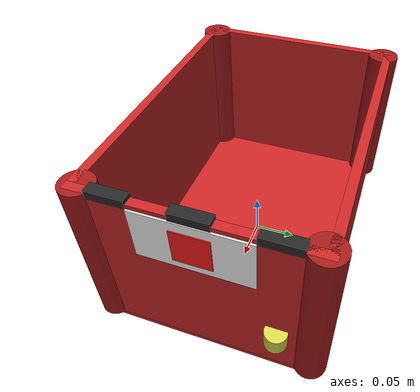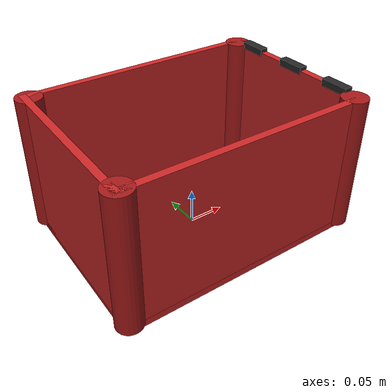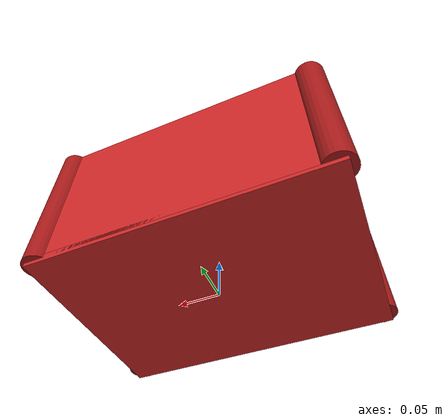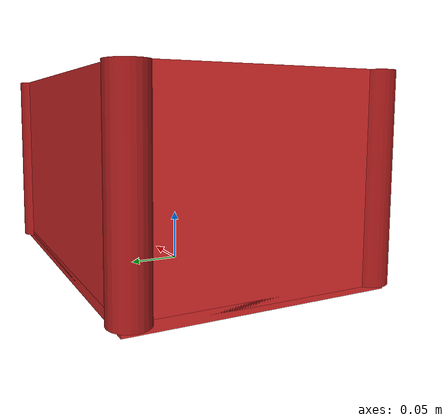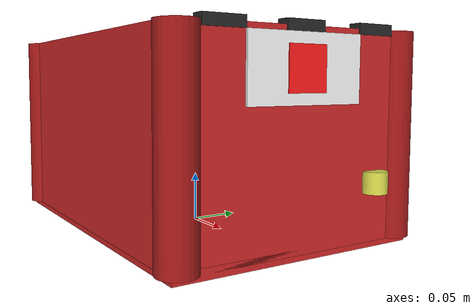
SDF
<?xml version="1.0"?>
<sdf version="1.6">
  <model name="sorting_bin_counterfeit">
    <static>true</static>

    <!-- Base/Bottom of the bin -->
    <link name="bin_base">
      <pose>0 0 0.005 0 0 0</pose>
      <inertial>
        <mass>2.0</mass>
        <inertia>
          <ixx>0.05</ixx><ixy>0</ixy><ixz>0</ixz>
          <iyy>0.05</iyy><iyz>0</iyz><izz>0.05</izz>
        </inertia>
      </inertial>
      <collision name="base_collision">
        <geometry>
          <box><size>0.35 0.25 0.01</size></box>
        </geometry>
        <surface>
          <friction>
            <ode><mu>0.8</mu><mu2>0.8</mu2></ode>
          </friction>
        </surface>
      </collision>
      <visual name="base_visual">
        <geometry>
          <box><size>0.35 0.25 0.01</size></box>
        </geometry>
        <material>
          <ambient>0.6 0.1 0.1 1</ambient>
          <diffuse>0.8 0.15 0.15 1</diffuse>
          <specular>0.2 0.2 0.2 1</specular>
        </material>
      </visual>
    </link>

    <!-- Front wall -->
    <link name="wall_front">
      <pose>0.17 0 0.10 0 0 0</pose>
      <collision name="front_collision">
        <geometry>
          <box><size>0.01 0.25 0.19</size></box>
        </geometry>
      </collision>
      <visual name="front_visual">
        <geometry>
          <box><size>0.01 0.25 0.19</size></box>
        </geometry>
        <material>
          <ambient>0.6 0.1 0.1 1</ambient>
          <diffuse>0.8 0.15 0.15 1</diffuse>
          <specular>0.2 0.2 0.2 1</specular>
        </material>
      </visual>
    </link>

    <!-- Back wall -->
    <link name="wall_back">
      <pose>-0.17 0 0.10 0 0 0</pose>
      <collision name="back_collision">
        <geometry>
          <box><size>0.01 0.25 0.19</size></box>
        </geometry>
      </collision>
      <visual name="back_visual">
        <geometry>
          <box><size>0.01 0.25 0.19</size></box>
        </geometry>
        <material>
          <ambient>0.6 0.1 0.1 1</ambient>
          <diffuse>0.8 0.15 0.15 1</diffuse>
          <specular>0.2 0.2 0.2 1</specular>
        </material>
      </visual>
    </link>

    <!-- Left wall -->
    <link name="wall_left">
      <pose>0 -0.12 0.10 0 0 0</pose>
      <collision name="left_collision">
        <geometry>
          <box><size>0.33 0.01 0.19</size></box>
        </geometry>
      </collision>
      <visual name="left_visual">
        <geometry>
          <box><size>0.33 0.01 0.19</size></box>
        </geometry>
        <material>
          <ambient>0.6 0.1 0.1 1</ambient>
          <diffuse>0.8 0.15 0.15 1</diffuse>
          <specular>0.2 0.2 0.2 1</specular>
        </material>
      </visual>
    </link>

    <!-- Right wall -->
    <link name="wall_right">
      <pose>0 0.12 0.10 0 0 0</pose>
      <collision name="right_collision">
        <geometry>
          <box><size>0.33 0.01 0.19</size></box>
        </geometry>
      </collision>
      <visual name="right_visual">
        <geometry>
          <box><size>0.33 0.01 0.19</size></box>
        </geometry>
        <material>
          <ambient>0.6 0.1 0.1 1</ambient>
          <diffuse>0.8 0.15 0.15 1</diffuse>
          <specular>0.2 0.2 0.2 1</specular>
        </material>
      </visual>
    </link>

    <!-- Label panel on front -->
    <link name="label_panel">
      <pose>0.176 0 0.16 0 0 0</pose>
      <visual name="label_visual">
        <geometry>
          <box><size>0.002 0.12 0.06</size></box>
        </geometry>
        <material>
          <ambient>0.95 0.95 0.95 1</ambient>
          <diffuse>0.98 0.98 0.98 1</diffuse>
          <specular>0.1 0.1 0.1 1</specular>
        </material>
      </visual>
    </link>

    <!-- Red X warning indicator -->
    <link name="status_indicator">
      <pose>0.178 0 0.16 0 0 0</pose>
      <visual name="indicator_visual">
        <geometry>
          <box><size>0.001 0.04 0.04</size></box>
        </geometry>
        <material>
          <ambient>0.9 0.0 0.0 1</ambient>
          <diffuse>1.0 0.1 0.1 1</diffuse>
          <specular>0.3 0.3 0.3 1</specular>
          <emissive>0.5 0.0 0.0 1</emissive>
        </material>
      </visual>
    </link>

    <!-- Hazard stripes - diagonal pattern simulation -->
    <link name="hazard_stripe_1">
      <pose>0.17 0.08 0.195 0 0 0</pose>
      <visual name="stripe1_visual">
        <geometry>
          <box><size>0.012 0.04 0.01</size></box>
        </geometry>
        <material>
          <ambient>0.1 0.1 0.1 1</ambient>
          <diffuse>0.15 0.15 0.15 1</diffuse>
        </material>
      </visual>
    </link>

    <link name="hazard_stripe_2">
      <pose>0.17 0.0 0.195 0 0 0</pose>
      <visual name="stripe2_visual">
        <geometry>
          <box><size>0.012 0.04 0.01</size></box>
        </geometry>
        <material>
          <ambient>0.1 0.1 0.1 1</ambient>
          <diffuse>0.15 0.15 0.15 1</diffuse>
        </material>
      </visual>
    </link>

    <link name="hazard_stripe_3">
      <pose>0.17 -0.08 0.195 0 0 0</pose>
      <visual name="stripe3_visual">
        <geometry>
          <box><size>0.012 0.04 0.01</size></box>
        </geometry>
        <material>
          <ambient>0.1 0.1 0.1 1</ambient>
          <diffuse>0.15 0.15 0.15 1</diffuse>
        </material>
      </visual>
    </link>

    <!-- Security lock visual -->
    <link name="security_lock">
      <pose>0.178 0.08 0.06 0 0 0</pose>
      <visual name="lock_visual">
        <geometry>
          <cylinder><radius>0.012</radius><length>0.02</length></cylinder>
        </geometry>
        <material>
          <ambient>0.7 0.7 0.2 1</ambient>
          <diffuse>0.85 0.85 0.3 1</diffuse>
          <specular>0.5 0.5 0.5 1</specular>
        </material>
      </visual>
    </link>

    <!-- Corner reinforcements (heavy duty look) -->
    <link name="corner_1">
      <pose>0.165 0.115 0.10 0 0 0</pose>
      <visual name="corner1_visual">
        <geometry>
          <cylinder><radius>0.018</radius><length>0.19</length></cylinder>
        </geometry>
        <material>
          <ambient>0.5 0.08 0.08 1</ambient>
          <diffuse>0.65 0.1 0.1 1</diffuse>
          <specular>0.3 0.3 0.3 1</specular>
        </material>
      </visual>
    </link>

    <link name="corner_2">
      <pose>0.165 -0.115 0.10 0 0 0</pose>
      <visual name="corner2_visual">
        <geometry>
          <cylinder><radius>0.018</radius><length>0.19</length></cylinder>
        </geometry>
        <material>
          <ambient>0.5 0.08 0.08 1</ambient>
          <diffuse>0.65 0.1 0.1 1</diffuse>
          <specular>0.3 0.3 0.3 1</specular>
        </material>
      </visual>
    </link>

    <link name="corner_3">
      <pose>-0.165 0.115 0.10 0 0 0</pose>
      <visual name="corner3_visual">
        <geometry>
          <cylinder><radius>0.018</radius><length>0.19</length></cylinder>
        </geometry>
        <material>
          <ambient>0.5 0.08 0.08 1</ambient>
          <diffuse>0.65 0.1 0.1 1</diffuse>
          <specular>0.3 0.3 0.3 1</specular>
        </material>
      </visual>
    </link>

    <link name="corner_4">
      <pose>-0.165 -0.115 0.10 0 0 0</pose>
      <visual name="corner4_visual">
        <geometry>
          <cylinder><radius>0.018</radius><length>0.19</length></cylinder>
        </geometry>
        <material>
          <ambient>0.5 0.08 0.08 1</ambient>
          <diffuse>0.65 0.1 0.1 1</diffuse>
          <specular>0.3 0.3 0.3 1</specular>
        </material>
      </visual>
    </link>

    <!-- Fixed joints -->
    <joint name="base_to_front" type="fixed">
      <parent>bin_base</parent>
      <child>wall_front</child>
    </joint>
    <joint name="base_to_back" type="fixed">
      <parent>bin_base</parent>
      <child>wall_back</child>
    </joint>
    <joint name="base_to_left" type="fixed">
      <parent>bin_base</parent>
      <child>wall_left</child>
    </joint>
    <joint name="base_to_right" type="fixed">
      <parent>bin_base</parent>
      <child>wall_right</child>
    </joint>
    <joint name="front_to_label" type="fixed">
      <parent>wall_front</parent>
      <child>label_panel</child>
    </joint>
    <joint name="label_to_indicator" type="fixed">
      <parent>label_panel</parent>
      <child>status_indicator</child>
    </joint>
    <joint name="front_to_hazard1" type="fixed">
      <parent>wall_front</parent>
      <child>hazard_stripe_1</child>
    </joint>
    <joint name="front_to_hazard2" type="fixed">
      <parent>wall_front</parent>
      <child>hazard_stripe_2</child>
    </joint>
    <joint name="front_to_hazard3" type="fixed">
      <parent>wall_front</parent>
      <child>hazard_stripe_3</child>
    </joint>
    <joint name="front_to_lock" type="fixed">
      <parent>wall_front</parent>
      <child>security_lock</child>
    </joint>
    <joint name="base_to_corner1" type="fixed">
      <parent>bin_base</parent>
      <child>corner_1</child>
    </joint>
    <joint name="base_to_corner2" type="fixed">
      <parent>bin_base</parent>
      <child>corner_2</child>
    </joint>
    <joint name="base_to_corner3" type="fixed">
      <parent>bin_base</parent>
      <child>corner_3</child>
    </joint>
    <joint name="base_to_corner4" type="fixed">
      <parent>bin_base</parent>
      <child>corner_4</child>
    </joint>

  </model>
</sdf>
